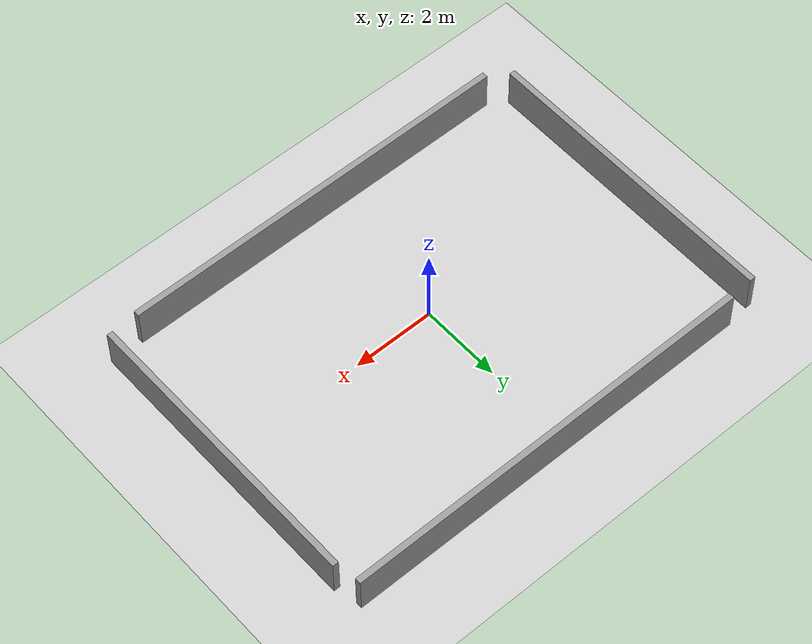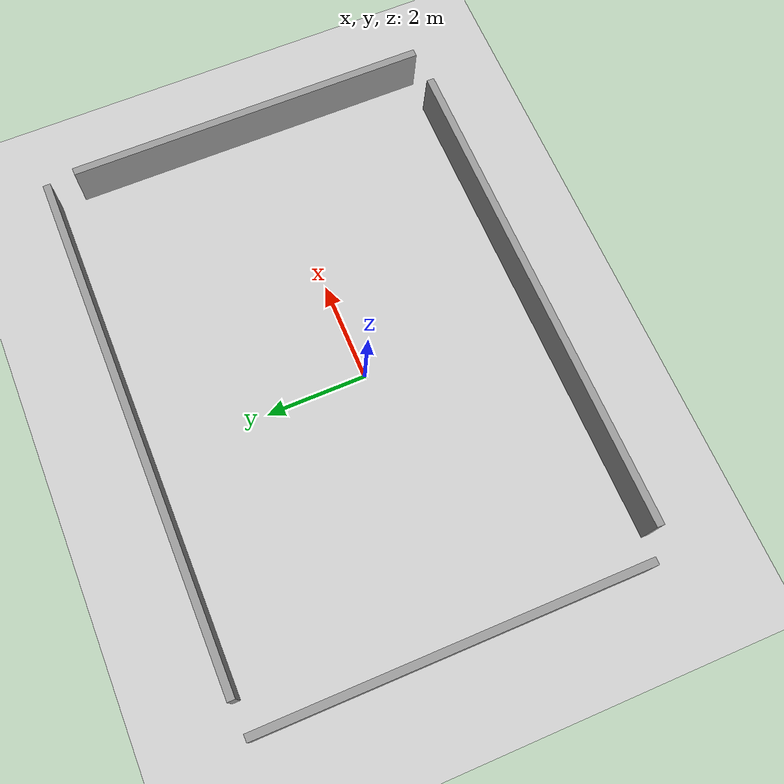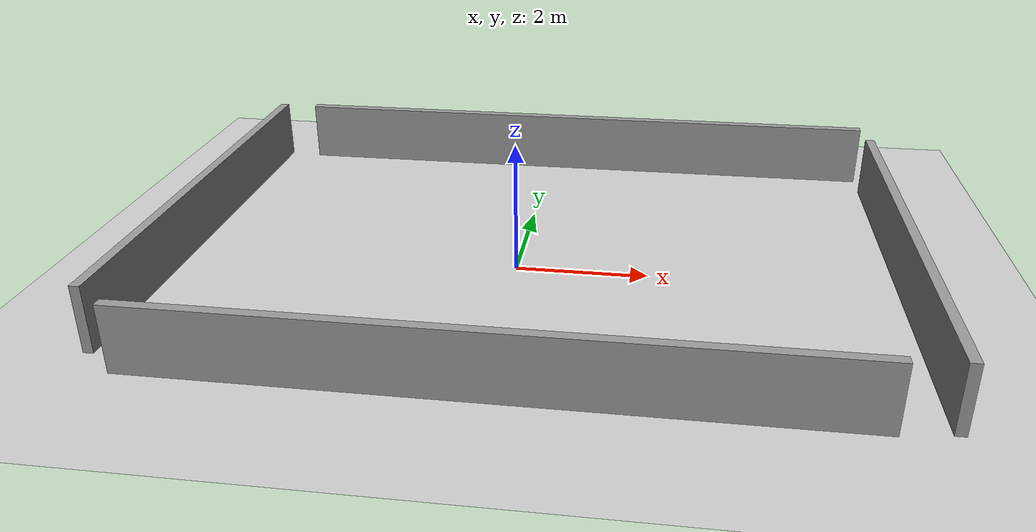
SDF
<sdf version="1.7">
 <world name="default">
  <light name="sun" type="directional">
   <pose>0 0 10 0 -0 0</pose>
   <diffuse>0.8 0.8 0.8 1</diffuse>
   <specular>0.2 0.2 0.2 1</specular>
   <attenuation>
    <range>1000</range>
    <constant>0.9</constant>
    <linear>0.01</linear>
    <quadratic>0.001</quadratic>
   </attenuation>
   <direction>-0.5 0.1 -0.9</direction>
   <spot><inner_angle>0</inner_angle><outer_angle>0</outer_angle><falloff>0</falloff></spot>
  </light>
  <model name="ground_plane">
   <static>1</static>
   <link name="link">
    <collision name="collision">
     <geometry><plane><normal>0 0 1</normal><size>100 100</size></plane></geometry>
     <surface><friction><ode><mu>100</mu><mu2>50</mu2></ode></friction></surface>
    </collision>
    <visual name="visual">
     <cast_shadows>0</cast_shadows>
     <geometry><plane><normal>0 0 1</normal><size>100 100</size></plane></geometry>
     <material>
      <script><uri>file://media/materials/scripts/gazebo.material</uri><name>Gazebo/Grey</name></script>
     </material>
    </visual>
   </link>
  </model>
  <gravity>0 0 -9.8</gravity>
  <magnetic_field>6e-06 2.3e-05 -4.2e-05</magnetic_field>
  <atmosphere type="adiabatic"/>
  <physics type="ode">
   <max_step_size>0.001</max_step_size>
   <real_time_factor>1</real_time_factor>
   <real_time_update_rate>1000</real_time_update_rate>
  </physics>
  <scene><ambient>0.4 0.4 0.4 1</ambient><background>0.7 0.7 0.7 1</background><shadows>0</shadows></scene>
  <spherical_coordinates>
   <surface_model>EARTH_WGS84</surface_model>
   <latitude_deg>0</latitude_deg>
   <longitude_deg>0</longitude_deg>
   <elevation>0</elevation>
   <heading_deg>0</heading_deg>
  </spherical_coordinates>
  <audio><device>default</device></audio>
  <model name="walls">
   <pose>0.251922 0.750907 0 0 -0 0</pose>
   <link name="Wall_10">
    <collision name="Wall_10_Collision">
     <geometry><box><size>7.5 0.15 1</size></box></geometry>
     <pose>0 0 0.5 0 -0 0</pose>
    </collision>
    <visual name="Wall_10_Visual">
     <pose>0 0 0.5 0 -0 0</pose>
     <geometry><box><size>7.5 0.15 1</size></box></geometry>
     <material>
      <script><uri>file://media/materials/scripts/gazebo.material</uri><name>Gazebo/Grey</name></script>
      <ambient>1 1 1 1</ambient>
     </material>
     <meta><layer>0</layer></meta>
    </visual>
    <pose>-5.48 -0.167 0 0 -0 1.5708</pose>
   </link>
   <link name="Wall_12">
    <collision name="Wall_12_Collision">
     <geometry><box><size>10.25 0.15 1</size></box></geometry>
     <pose>0 0 0.5 0 -0 0</pose>
    </collision>
    <visual name="Wall_12_Visual">
     <pose>0 0 0.5 0 -0 0</pose>
     <geometry><box><size>10.25 0.15 1</size></box></geometry>
     <material>
      <script><uri>file://media/materials/scripts/gazebo.material</uri><name>Gazebo/Grey</name></script>
      <ambient>1 1 1 1</ambient>
     </material>
     <meta><layer>0</layer></meta>
    </visual>
    <pose>0.272 3.587 0 0 -0 0</pose>
   </link>
   <link name="Wall_14">
    <collision name="Wall_14_Collision">
     <geometry><box><size>7.25 0.15 1</size></box></geometry>
     <pose>0 0 0.5 0 -0 0</pose>
    </collision>
    <visual name="Wall_14_Visual">
     <pose>0 0 0.5 0 -0 0</pose>
     <geometry><box><size>7.25 0.15 1</size></box></geometry>
     <material>
      <script><uri>file://media/materials/scripts/gazebo.material</uri><name>Gazebo/Grey</name></script>
      <ambient>1 1 1 1</ambient>
     </material>
     <meta><layer>0</layer></meta>
    </visual>
    <pose>5.48 -0.606 0 0 -0 -1.5708</pose>
   </link>
   <link name="Wall_16">
    <collision name="Wall_16_Collision">
     <geometry><box><size>9.75 0.15 1</size></box></geometry>
     <pose>0 0 0.5 0 -0 0</pose>
    </collision>
    <visual name="Wall_16_Visual">
     <pose>0 0 0.5 0 -0 0</pose>
     <geometry><box><size>9.75 0.15 1</size></box></geometry>
     <material>
      <script><uri>file://media/materials/scripts/gazebo.material</uri><name>Gazebo/Grey</name></script>
      <ambient>1 1 1 1</ambient>
     </material>
     <meta><layer>0</layer></meta>
    </visual>
    <pose>-0.105 -4.257 0 0 -0 3.14159</pose>
   </link>
   <static>1</static>
  </model>
 </world>
</sdf>
